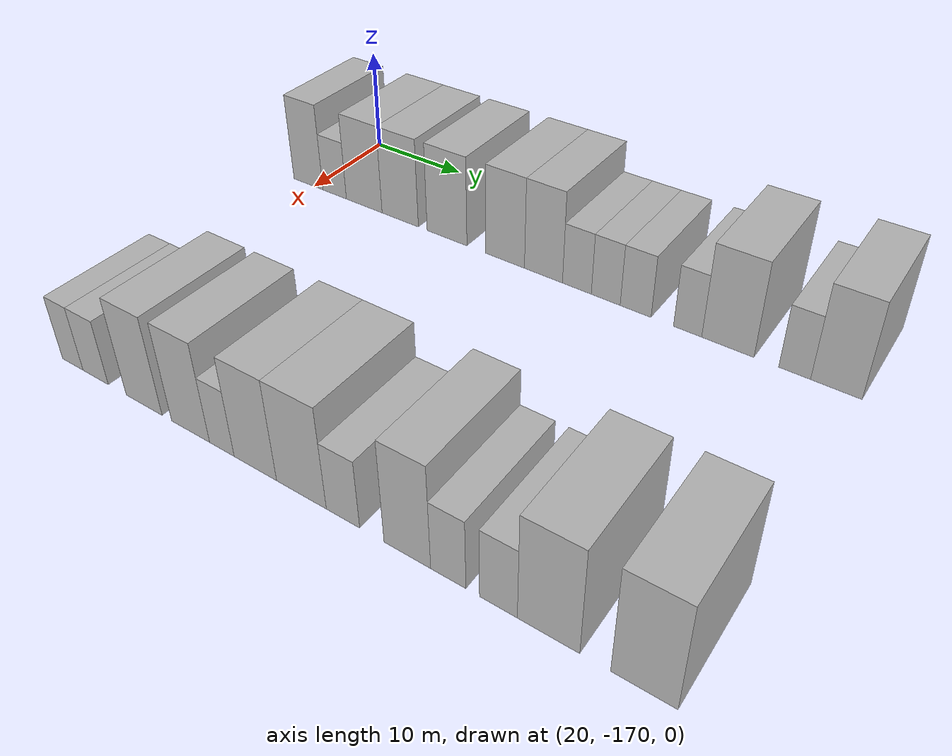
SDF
<sdf version="1.6">
 <world name="default">
  <model name="building_14">
   <static>1</static>
   <pose>25.0000 -170.7742 0 0.000000 0.000000 0.000000</pose>
   <link name="link">
    <pose>0 0 4.50 0 0 0</pose>
    <collision name="collision"><geometry><box><size>10.0000 3.7273 9.0000</size></box></geometry></collision>
    <visual name="visual">
     <cast_shadows>0</cast_shadows>
     <geometry><box><size>10.0000 3.7273 9.0000</size></box></geometry>
     <material>
      <script>
       <uri>model://HANNAS_wall/materials/scripts</uri>
       <uri>model://HANNAS_wall/materials/textures</uri>
       <name>vrc/HANNAS_wall</name>
      </script>
     </material>
    </visual>
   </link>
  </model>
  <model name="building_15">
   <static>1</static>
   <pose>25.0000 -167.4381 0 0.000000 0.000000 0.000000</pose>
   <link name="link">
    <pose>0 0 3.00 0 0 0</pose>
    <collision name="collision"><geometry><box><size>10.0000 2.9449 6.0000</size></box></geometry></collision>
    <visual name="visual">
     <cast_shadows>0</cast_shadows>
     <geometry><box><size>10.0000 2.9449 6.0000</size></box></geometry>
     <material>
      <script>
       <uri>model://HANNAS_wall/materials/scripts</uri>
       <uri>model://HANNAS_wall/materials/textures</uri>
       <name>vrc/HANNAS_wall</name>
      </script>
     </material>
    </visual>
   </link>
  </model>
  <model name="building_16">
   <static>1</static>
   <pose>25.0000 -163.7982 0 0.000000 0.000000 0.000000</pose>
   <link name="link">
    <pose>0 0 4.50 0 0 0</pose>
    <collision name="collision"><geometry><box><size>10.0000 4.3349 9.0000</size></box></geometry></collision>
    <visual name="visual">
     <cast_shadows>0</cast_shadows>
     <geometry><box><size>10.0000 4.3349 9.0000</size></box></geometry>
     <material>
      <script>
       <uri>model://HANNAS_wall/materials/scripts</uri>
       <uri>model://HANNAS_wall/materials/textures</uri>
       <name>vrc/HANNAS_wall</name>
      </script>
     </material>
    </visual>
   </link>
  </model>
  <model name="building_17">
   <static>1</static>
   <pose>25.0000 -159.5141 0 0.000000 0.000000 0.000000</pose>
   <link name="link">
    <pose>0 0 4.50 0 0 0</pose>
    <collision name="collision"><geometry><box><size>10.0000 4.2334 9.0000</size></box></geometry></collision>
    <visual name="visual">
     <cast_shadows>0</cast_shadows>
     <geometry><box><size>10.0000 4.2334 9.0000</size></box></geometry>
     <material>
      <script>
       <uri>model://HANNAS_wall/materials/scripts</uri>
       <uri>model://HANNAS_wall/materials/textures</uri>
       <name>vrc/HANNAS_wall</name>
      </script>
     </material>
    </visual>
   </link>
  </model>
  <model name="building_18">
   <static>1</static>
   <pose>25.0000 -154.1911 0 0.000000 0.000000 0.000000</pose>
   <link name="link">
    <pose>0 0 4.50 0 0 0</pose>
    <collision name="collision"><geometry><box><size>10.0000 4.4124 9.0000</size></box></geometry></collision>
    <visual name="visual">
     <cast_shadows>0</cast_shadows>
     <geometry><box><size>10.0000 4.4124 9.0000</size></box></geometry>
     <material>
      <script>
       <uri>model://HANNAS_wall/materials/scripts</uri>
       <uri>model://HANNAS_wall/materials/textures</uri>
       <name>vrc/HANNAS_wall</name>
      </script>
     </material>
    </visual>
   </link>
  </model>
  <model name="building_19">
   <static>1</static>
   <pose>25.0000 -147.9562 0 0.000000 0.000000 0.000000</pose>
   <link name="link">
    <pose>0 0 4.50 0 0 0</pose>
    <collision name="collision"><geometry><box><size>10.0000 4.0575 9.0000</size></box></geometry></collision>
    <visual name="visual">
     <cast_shadows>0</cast_shadows>
     <geometry><box><size>10.0000 4.0575 9.0000</size></box></geometry>
     <material>
      <script>
       <uri>model://HANNAS_wall/materials/scripts</uri>
       <uri>model://HANNAS_wall/materials/textures</uri>
       <name>vrc/HANNAS_wall</name>
      </script>
     </material>
    </visual>
   </link>
  </model>
  <model name="building_20">
   <static>1</static>
   <pose>25.0000 -144.0206 0 0.000000 0.000000 0.000000</pose>
   <link name="link">
    <pose>0 0 4.50 0 0 0</pose>
    <collision name="collision"><geometry><box><size>10.0000 3.8136 9.0000</size></box></geometry></collision>
    <visual name="visual">
     <cast_shadows>0</cast_shadows>
     <geometry><box><size>10.0000 3.8136 9.0000</size></box></geometry>
     <material>
      <script>
       <uri>model://HANNAS_wall/materials/scripts</uri>
       <uri>model://HANNAS_wall/materials/textures</uri>
       <name>vrc/HANNAS_wall</name>
      </script>
     </material>
    </visual>
   </link>
  </model>
  <model name="building_21">
   <static>1</static>
   <pose>25.0000 -140.7175 0 0.000000 0.000000 0.000000</pose>
   <link name="link">
    <pose>0 0 3.00 0 0 0</pose>
    <collision name="collision"><geometry><box><size>10.0000 2.7927 6.0000</size></box></geometry></collision>
    <visual name="visual">
     <cast_shadows>0</cast_shadows>
     <geometry><box><size>10.0000 2.7927 6.0000</size></box></geometry>
     <material>
      <script>
       <uri>model://HANNAS_wall/materials/scripts</uri>
       <uri>model://HANNAS_wall/materials/textures</uri>
       <name>vrc/HANNAS_wall</name>
      </script>
     </material>
    </visual>
   </link>
  </model>
  <model name="building_22">
   <static>1</static>
   <pose>25.0000 -137.9594 0 0.000000 0.000000 0.000000</pose>
   <link name="link">
    <pose>0 0 3.00 0 0 0</pose>
    <collision name="collision"><geometry><box><size>10.0000 2.7236 6.0000</size></box></geometry></collision>
    <visual name="visual">
     <cast_shadows>0</cast_shadows>
     <geometry><box><size>10.0000 2.7236 6.0000</size></box></geometry>
     <material>
      <script>
       <uri>model://HANNAS_wall/materials/scripts</uri>
       <uri>model://HANNAS_wall/materials/textures</uri>
       <name>vrc/HANNAS_wall</name>
      </script>
     </material>
    </visual>
   </link>
  </model>
  <model name="building_23">
   <static>1</static>
   <pose>25.0000 -135.1824 0 0.000000 0.000000 0.000000</pose>
   <link name="link">
    <pose>0 0 3.00 0 0 0</pose>
    <collision name="collision"><geometry><box><size>10.0000 2.8303 6.0000</size></box></geometry></collision>
    <visual name="visual">
     <cast_shadows>0</cast_shadows>
     <geometry><box><size>10.0000 2.8303 6.0000</size></box></geometry>
     <material>
      <script>
       <uri>model://HANNAS_wall/materials/scripts</uri>
       <uri>model://HANNAS_wall/materials/textures</uri>
       <name>vrc/HANNAS_wall</name>
      </script>
     </material>
    </visual>
   </link>
  </model>
  <model name="building_24">
   <static>1</static>
   <pose>25.0000 -130.5386 0 0.000000 0.000000 0.000000</pose>
   <link name="link">
    <pose>0 0 3.00 0 0 0</pose>
    <collision name="collision"><geometry><box><size>10.0000 2.4573 6.0000</size></box></geometry></collision>
    <visual name="visual">
     <cast_shadows>0</cast_shadows>
     <geometry><box><size>10.0000 2.4573 6.0000</size></box></geometry>
     <material>
      <script>
       <uri>model://HANNAS_wall/materials/scripts</uri>
       <uri>model://HANNAS_wall/materials/textures</uri>
       <name>vrc/HANNAS_wall</name>
      </script>
     </material>
    </visual>
   </link>
  </model>
  <model name="building_25">
   <static>1</static>
   <pose>25.0000 -127.1164 0 0.000000 0.000000 0.000000</pose>
   <link name="link">
    <pose>0 0 4.50 0 0 0</pose>
    <collision name="collision"><geometry><box><size>10.0000 4.3872 9.0000</size></box></geometry></collision>
    <visual name="visual">
     <cast_shadows>0</cast_shadows>
     <geometry><box><size>10.0000 4.3872 9.0000</size></box></geometry>
     <material>
      <script>
       <uri>model://HANNAS_wall/materials/scripts</uri>
       <uri>model://HANNAS_wall/materials/textures</uri>
       <name>vrc/HANNAS_wall</name>
      </script>
     </material>
    </visual>
   </link>
  </model>
  <model name="building_26">
   <static>1</static>
   <pose>25.0000 -121.6655 0 0.000000 0.000000 0.000000</pose>
   <link name="link">
    <pose>0 0 3.00 0 0 0</pose>
    <collision name="collision"><geometry><box><size>10.0000 2.5145 6.0000</size></box></geometry></collision>
    <visual name="visual">
     <cast_shadows>0</cast_shadows>
     <geometry><box><size>10.0000 2.5145 6.0000</size></box></geometry>
     <material>
      <script>
       <uri>model://HANNAS_wall/materials/scripts</uri>
       <uri>model://HANNAS_wall/materials/textures</uri>
       <name>vrc/HANNAS_wall</name>
      </script>
     </material>
    </visual>
   </link>
  </model>
  <model name="building_27">
   <static>1</static>
   <pose>25.0000 -118.4431 0 0.000000 0.000000 0.000000</pose>
   <link name="link">
    <pose>0 0 4.50 0 0 0</pose>
    <collision name="collision"><geometry><box><size>10.0000 3.9304 9.0000</size></box></geometry></collision>
    <visual name="visual">
     <cast_shadows>0</cast_shadows>
     <geometry><box><size>10.0000 3.9304 9.0000</size></box></geometry>
     <material>
      <script>
       <uri>model://HANNAS_wall/materials/scripts</uri>
       <uri>model://HANNAS_wall/materials/textures</uri>
       <name>vrc/HANNAS_wall</name>
      </script>
     </material>
    </visual>
   </link>
  </model>
  <model name="building_119">
   <static>1</static>
   <pose>55.0000 -167.6865 0 0.000000 0.000000 0.000000</pose>
   <link name="link">
    <pose>0 0 3.00 0 0 0</pose>
    <collision name="collision"><geometry><box><size>10.0000 2.4120 6.0000</size></box></geometry></collision>
    <visual name="visual">
     <cast_shadows>0</cast_shadows>
     <geometry><box><size>10.0000 2.4120 6.0000</size></box></geometry>
     <material>
      <script>
       <uri>model://HANNAS_wall/materials/scripts</uri>
       <uri>model://HANNAS_wall/materials/textures</uri>
       <name>vrc/HANNAS_wall</name>
      </script>
     </material>
    </visual>
   </link>
  </model>
  <model name="building_120">
   <static>1</static>
   <pose>55.0000 -165.0368 0 0.000000 0.000000 0.000000</pose>
   <link name="link">
    <pose>0 0 3.00 0 0 0</pose>
    <collision name="collision"><geometry><box><size>10.0000 2.8874 6.0000</size></box></geometry></collision>
    <visual name="visual">
     <cast_shadows>0</cast_shadows>
     <geometry><box><size>10.0000 2.8874 6.0000</size></box></geometry>
     <material>
      <script>
       <uri>model://HANNAS_wall/materials/scripts</uri>
       <uri>model://HANNAS_wall/materials/textures</uri>
       <name>vrc/HANNAS_wall</name>
      </script>
     </material>
    </visual>
   </link>
  </model>
  <model name="building_121">
   <static>1</static>
   <pose>55.0000 -159.6629 0 0.000000 0.000000 0.000000</pose>
   <link name="link">
    <pose>0 0 4.50 0 0 0</pose>
    <collision name="collision"><geometry><box><size>10.0000 3.8603 9.0000</size></box></geometry></collision>
    <visual name="visual">
     <cast_shadows>0</cast_shadows>
     <geometry><box><size>10.0000 3.8603 9.0000</size></box></geometry>
     <material>
      <script>
       <uri>model://HANNAS_wall/materials/scripts</uri>
       <uri>model://HANNAS_wall/materials/textures</uri>
       <name>vrc/HANNAS_wall</name>
      </script>
     </material>
    </visual>
   </link>
  </model>
  <model name="building_122">
   <static>1</static>
   <pose>55.0000 -154.8069 0 0.000000 0.000000 0.000000</pose>
   <link name="link">
    <pose>0 0 4.50 0 0 0</pose>
    <collision name="collision"><geometry><box><size>10.0000 3.8517 9.0000</size></box></geometry></collision>
    <visual name="visual">
     <cast_shadows>0</cast_shadows>
     <geometry><box><size>10.0000 3.8517 9.0000</size></box></geometry>
     <material>
      <script>
       <uri>model://HANNAS_wall/materials/scripts</uri>
       <uri>model://HANNAS_wall/materials/textures</uri>
       <name>vrc/HANNAS_wall</name>
      </script>
     </material>
    </visual>
   </link>
  </model>
  <model name="building_123">
   <static>1</static>
   <pose>55.0000 -151.6798 0 0.000000 0.000000 0.000000</pose>
   <link name="link">
    <pose>0 0 3.00 0 0 0</pose>
    <collision name="collision"><geometry><box><size>10.0000 2.4026 6.0000</size></box></geometry></collision>
    <visual name="visual">
     <cast_shadows>0</cast_shadows>
     <geometry><box><size>10.0000 2.4026 6.0000</size></box></geometry>
     <material>
      <script>
       <uri>model://HANNAS_wall/materials/scripts</uri>
       <uri>model://HANNAS_wall/materials/textures</uri>
       <name>vrc/HANNAS_wall</name>
      </script>
     </material>
    </visual>
   </link>
  </model>
  <model name="building_124">
   <static>1</static>
   <pose>55.0000 -148.4894 0 0.000000 0.000000 0.000000</pose>
   <link name="link">
    <pose>0 0 4.50 0 0 0</pose>
    <collision name="collision"><geometry><box><size>10.0000 3.9782 9.0000</size></box></geometry></collision>
    <visual name="visual">
     <cast_shadows>0</cast_shadows>
     <geometry><box><size>10.0000 3.9782 9.0000</size></box></geometry>
     <material>
      <script>
       <uri>model://HANNAS_wall/materials/scripts</uri>
       <uri>model://HANNAS_wall/materials/textures</uri>
       <name>vrc/HANNAS_wall</name>
      </script>
     </material>
    </visual>
   </link>
  </model>
  <model name="building_125">
   <static>1</static>
   <pose>55.0000 -144.2872 0 0.000000 0.000000 0.000000</pose>
   <link name="link">
    <pose>0 0 4.50 0 0 0</pose>
    <collision name="collision"><geometry><box><size>10.0000 4.4262 9.0000</size></box></geometry></collision>
    <visual name="visual">
     <cast_shadows>0</cast_shadows>
     <geometry><box><size>10.0000 4.4262 9.0000</size></box></geometry>
     <material>
      <script>
       <uri>model://HANNAS_wall/materials/scripts</uri>
       <uri>model://HANNAS_wall/materials/textures</uri>
       <name>vrc/HANNAS_wall</name>
      </script>
     </material>
    </visual>
   </link>
  </model>
  <model name="building_126">
   <static>1</static>
   <pose>55.0000 -140.6618 0 0.000000 0.000000 0.000000</pose>
   <link name="link">
    <pose>0 0 3.00 0 0 0</pose>
    <collision name="collision"><geometry><box><size>10.0000 2.8247 6.0000</size></box></geometry></collision>
    <visual name="visual">
     <cast_shadows>0</cast_shadows>
     <geometry><box><size>10.0000 2.8247 6.0000</size></box></geometry>
     <material>
      <script>
       <uri>model://HANNAS_wall/materials/scripts</uri>
       <uri>model://HANNAS_wall/materials/textures</uri>
       <name>vrc/HANNAS_wall</name>
      </script>
     </material>
    </visual>
   </link>
  </model>
  <model name="building_127">
   <static>1</static>
   <pose>55.0000 -135.4095 0 0.000000 0.000000 0.000000</pose>
   <link name="link">
    <pose>0 0 4.50 0 0 0</pose>
    <collision name="collision"><geometry><box><size>10.0000 3.6800 9.0000</size></box></geometry></collision>
    <visual name="visual">
     <cast_shadows>0</cast_shadows>
     <geometry><box><size>10.0000 3.6800 9.0000</size></box></geometry>
     <material>
      <script>
       <uri>model://HANNAS_wall/materials/scripts</uri>
       <uri>model://HANNAS_wall/materials/textures</uri>
       <name>vrc/HANNAS_wall</name>
      </script>
     </material>
    </visual>
   </link>
  </model>
  <model name="building_128">
   <static>1</static>
   <pose>55.0000 -132.2395 0 0.000000 0.000000 0.000000</pose>
   <link name="link">
    <pose>0 0 3.00 0 0 0</pose>
    <collision name="collision"><geometry><box><size>10.0000 2.6601 6.0000</size></box></geometry></collision>
    <visual name="visual">
     <cast_shadows>0</cast_shadows>
     <geometry><box><size>10.0000 2.6601 6.0000</size></box></geometry>
     <material>
      <script>
       <uri>model://HANNAS_wall/materials/scripts</uri>
       <uri>model://HANNAS_wall/materials/textures</uri>
       <name>vrc/HANNAS_wall</name>
      </script>
     </material>
    </visual>
   </link>
  </model>
  <model name="building_129">
   <static>1</static>
   <pose>55.0000 -128.5564 0 0.000000 0.000000 0.000000</pose>
   <link name="link">
    <pose>0 0 3.00 0 0 0</pose>
    <collision name="collision"><geometry><box><size>10.0000 2.7060 6.0000</size></box></geometry></collision>
    <visual name="visual">
     <cast_shadows>0</cast_shadows>
     <geometry><box><size>10.0000 2.7060 6.0000</size></box></geometry>
     <material>
      <script>
       <uri>model://HANNAS_wall/materials/scripts</uri>
       <uri>model://HANNAS_wall/materials/textures</uri>
       <name>vrc/HANNAS_wall</name>
      </script>
     </material>
    </visual>
   </link>
  </model>
  <model name="building_130">
   <static>1</static>
   <pose>55.0000 -125.0766 0 0.000000 0.000000 0.000000</pose>
   <link name="link">
    <pose>0 0 4.50 0 0 0</pose>
    <collision name="collision"><geometry><box><size>10.0000 4.2535 9.0000</size></box></geometry></collision>
    <visual name="visual">
     <cast_shadows>0</cast_shadows>
     <geometry><box><size>10.0000 4.2535 9.0000</size></box></geometry>
     <material>
      <script>
       <uri>model://HANNAS_wall/materials/scripts</uri>
       <uri>model://HANNAS_wall/materials/textures</uri>
       <name>vrc/HANNAS_wall</name>
      </script>
     </material>
    </visual>
   </link>
  </model>
  <model name="building_131">
   <static>1</static>
   <pose>55.0000 -118.8574 0 0.000000 0.000000 0.000000</pose>
   <link name="link">
    <pose>0 0 4.50 0 0 0</pose>
    <collision name="collision"><geometry><box><size>10.0000 4.1849 9.0000</size></box></geometry></collision>
    <visual name="visual">
     <cast_shadows>0</cast_shadows>
     <geometry><box><size>10.0000 4.1849 9.0000</size></box></geometry>
     <material>
      <script>
       <uri>model://HANNAS_wall/materials/scripts</uri>
       <uri>model://HANNAS_wall/materials/textures</uri>
       <name>vrc/HANNAS_wall</name>
      </script>
     </material>
    </visual>
   </link>
  </model>
 </world>
</sdf>
